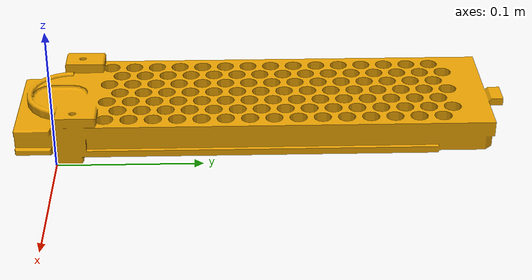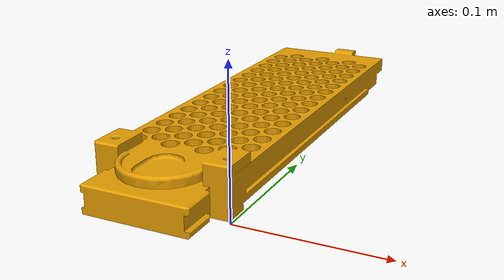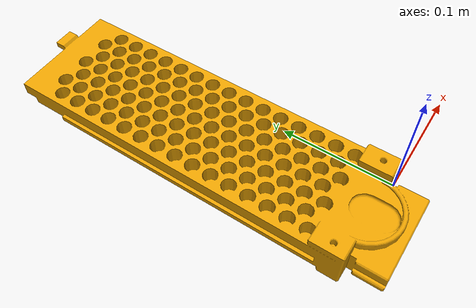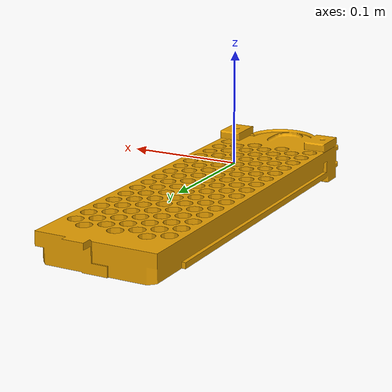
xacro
<?xml version="1.0" ?>
<robot xmlns:xacro="http://www.ros.org/wiki/xacro" name="hplc_plate">
    <link name='plate_link'>
      <visual name='visual'>
        <geometry>
          <mesh filename="meshes/hplc_plate.stl"/>
        </geometry>
        <material name="clay" />
      </visual>
    </link>
</robot>
